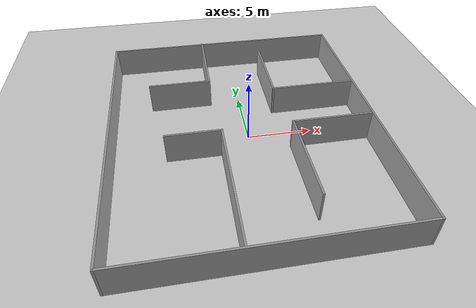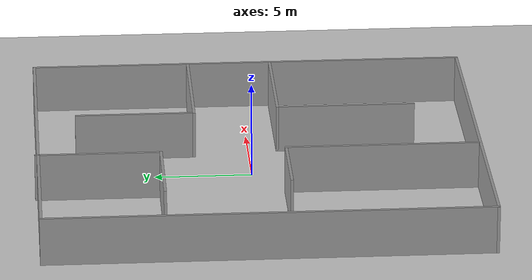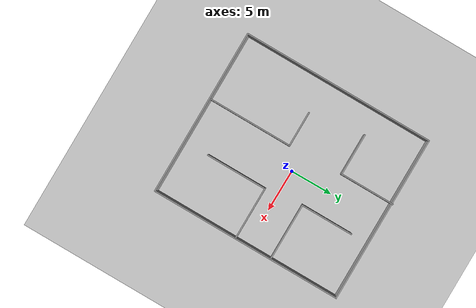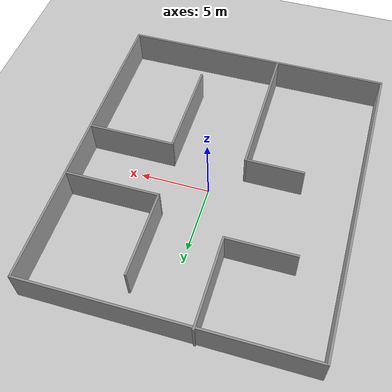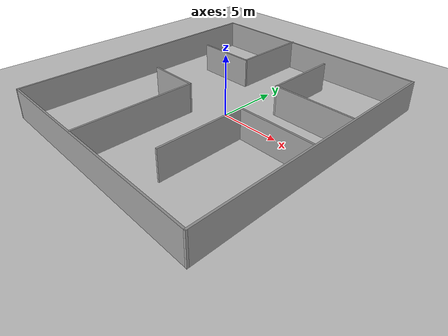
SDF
<sdf version="1.7">
 <world name="default">
  <light name="sun" type="directional">
   <pose>0 0 10 0 -0 0</pose>
   <diffuse>0.8 0.8 0.8 1</diffuse>
   <specular>0.2 0.2 0.2 1</specular>
   <attenuation>
    <range>1000</range>
    <constant>0.9</constant>
    <linear>0.01</linear>
    <quadratic>0.001</quadratic>
   </attenuation>
   <direction>-0.5 0.1 -0.9</direction>
   <spot><inner_angle>0</inner_angle><outer_angle>0</outer_angle><falloff>0</falloff></spot>
  </light>
  <model name="ground_plane">
   <static>1</static>
   <link name="link">
    <collision name="collision">
     <geometry><plane><normal>0 0 1</normal><size>100 100</size></plane></geometry>
     <surface>
      <contact><collide_bitmask>65535</collide_bitmask></contact>
      <friction><ode><mu>100</mu><mu2>50</mu2></ode></friction>
     </surface>
    </collision>
    <visual name="visual">
     <cast_shadows>0</cast_shadows>
     <geometry><plane><normal>0 0 1</normal><size>100 100</size></plane></geometry>
     <material>
      <script><uri>file://media/materials/scripts/gazebo.material</uri><name>Gazebo/Grey</name></script>
     </material>
    </visual>
   </link>
  </model>
  <gravity>0 0 -9.8</gravity>
  <magnetic_field>6e-06 2.3e-05 -4.2e-05</magnetic_field>
  <atmosphere type="adiabatic"/>
  <physics type="ode">
   <max_step_size>0.001</max_step_size>
   <real_time_factor>1</real_time_factor>
   <real_time_update_rate>1000</real_time_update_rate>
  </physics>
  <scene><ambient>0.4 0.4 0.4 1</ambient><background>0.7 0.7 0.7 1</background><shadows>1</shadows></scene>
  <spherical_coordinates>
   <surface_model>EARTH_WGS84</surface_model>
   <latitude_deg>0</latitude_deg>
   <longitude_deg>0</longitude_deg>
   <elevation>0</elevation>
   <heading_deg>0</heading_deg>
  </spherical_coordinates>
  <model name="home">
   <pose>-0.506319 -0.226024 0 0 -0 0</pose>
   <link name="Wall_10">
    <collision name="Wall_10_Collision">
     <geometry><box><size>19.75 0.15 2.5</size></box></geometry>
     <pose>0 0 1.25 0 -0 0</pose>
    </collision>
    <visual name="Wall_10_Visual">
     <pose>0 0 1.25 0 -0 0</pose>
     <geometry><box><size>19.75 0.15 2.5</size></box></geometry>
     <material>
      <script><uri>file://media/materials/scripts/gazebo.material</uri><name>Gazebo/Grey</name></script>
      <ambient>1 1 1 1</ambient>
     </material>
     <meta><layer>0</layer></meta>
    </visual>
    <pose>0 -11.3531 0 0 -0 3.14159</pose>
   </link>
   <link name="Wall_12">
    <collision name="Wall_12_Collision">
     <geometry><box><size>6.5 0.15 2.5</size></box></geometry>
     <pose>0 0 1.25 0 -0 0</pose>
    </collision>
    <visual name="Wall_12_Visual">
     <pose>0 0 1.25 0 -0 0</pose>
     <geometry><box><size>6.5 0.15 2.5</size></box></geometry>
     <material>
      <script><uri>file://media/materials/scripts/gazebo.material</uri><name>Gazebo/Grey</name></script>
      <ambient>1 1 1 1</ambient>
     </material>
     <meta><layer>0</layer></meta>
    </visual>
    <pose>-1.95077 8.17814 0 0 -0 -1.5708</pose>
   </link>
   <link name="Wall_13">
    <collision name="Wall_13_Collision">
     <geometry><box><size>5 0.15 2.5</size></box></geometry>
     <pose>0 0 1.25 0 -0 0</pose>
    </collision>
    <visual name="Wall_13_Visual">
     <pose>0 0 1.25 0 -0 0</pose>
     <geometry><box><size>5 0.15 2.5</size></box></geometry>
     <material>
      <script><uri>file://media/materials/scripts/gazebo.material</uri><name>Gazebo/Grey</name></script>
      <ambient>1 1 1 1</ambient>
     </material>
     <meta><layer>0</layer></meta>
    </visual>
    <pose>-4.37577 5.00314 0 0 -0 3.14159</pose>
   </link>
   <link name="Wall_15">
    <collision name="Wall_15_Collision">
     <geometry><box><size>10 0.15 2.5</size></box></geometry>
     <pose>0 0 1.25 0 -0 0</pose>
    </collision>
    <visual name="Wall_15_Visual">
     <pose>0 0 1.25 0 -0 0</pose>
     <geometry><box><size>10 0.15 2.5</size></box></geometry>
     <material>
      <script><uri>file://media/materials/scripts/gazebo.material</uri><name>Gazebo/Grey</name></script>
      <ambient>1 1 1 1</ambient>
     </material>
     <meta><layer>0</layer></meta>
    </visual>
    <pose>-1.73554 -6.32051 0 0 -0 1.5708</pose>
   </link>
   <link name="Wall_17">
    <collision name="Wall_17_Collision">
     <geometry><box><size>6.75 0.15 2.5</size></box></geometry>
     <pose>0 0 1.25 0 -0 0</pose>
    </collision>
    <visual name="Wall_17_Visual">
     <pose>0 0 1.25 0 -0 0</pose>
     <geometry><box><size>6.75 0.15 2.5</size></box></geometry>
     <material>
      <script><uri>file://media/materials/scripts/gazebo.material</uri><name>Gazebo/Grey</name></script>
      <ambient>1 1 1 1</ambient>
     </material>
     <meta><layer>0</layer></meta>
    </visual>
    <pose>6.3714 3.06697 0 0 -0 3.14159</pose>
   </link>
   <link name="Wall_18">
    <collision name="Wall_18_Collision">
     <geometry><box><size>6.25 0.15 2.5</size></box></geometry>
     <pose>0 0 1.25 0 -0 0</pose>
    </collision>
    <visual name="Wall_18_Visual">
     <pose>0 0 1.25 0 -0 0</pose>
     <geometry><box><size>6.25 0.15 2.5</size></box></geometry>
     <material>
      <script><uri>file://media/materials/scripts/gazebo.material</uri><name>Gazebo/Grey</name></script>
      <ambient>1 1 1 1</ambient>
     </material>
     <meta><layer>0</layer></meta>
    </visual>
    <pose>3.0714 6.11697 0 0 -0 1.5708</pose>
   </link>
   <link name="Wall_21">
    <collision name="Wall_21_Collision">
     <geometry><box><size>4.25 0.15 2.5</size></box></geometry>
     <pose>0 0 1.25 0 -0 0</pose>
    </collision>
    <visual name="Wall_21_Visual">
     <pose>0 0 1.25 0 -0 0</pose>
     <geometry><box><size>4.25 0.15 2.5</size></box></geometry>
     <material>
      <script><uri>file://media/materials/scripts/gazebo.material</uri><name>Gazebo/Grey</name></script>
      <ambient>1 1 1 1</ambient>
     </material>
     <meta><layer>0</layer></meta>
    </visual>
    <pose>-3.78554 -1.39551 0 0 -0 3.14159</pose>
   </link>
   <link name="Wall_23">
    <collision name="Wall_23_Collision">
     <geometry><box><size>6.25 0.15 2.5</size></box></geometry>
     <pose>0 0 1.25 0 -0 0</pose>
    </collision>
    <visual name="Wall_23_Visual">
     <pose>0 0 1.25 0 -0 0</pose>
     <geometry><box><size>6.25 0.15 2.5</size></box></geometry>
     <material>
      <script><uri>file://media/materials/scripts/gazebo.material</uri><name>Gazebo/Grey</name></script>
      <ambient>1 1 1 1</ambient>
     </material>
     <meta><layer>0</layer></meta>
    </visual>
    <pose>6.63698 -1.31273 0 0 -0 3.14159</pose>
   </link>
   <link name="Wall_24">
    <collision name="Wall_24_Collision">
     <geometry><box><size>7.25 0.15 2.5</size></box></geometry>
     <pose>0 0 1.25 0 -0 0</pose>
    </collision>
    <visual name="Wall_24_Visual">
     <pose>0 0 1.25 0 -0 0</pose>
     <geometry><box><size>7.25 0.15 2.5</size></box></geometry>
     <material>
      <script><uri>file://media/materials/scripts/gazebo.material</uri><name>Gazebo/Grey</name></script>
      <ambient>1 1 1 1</ambient>
     </material>
     <meta><layer>0</layer></meta>
    </visual>
    <pose>3.58698 -4.86273 0 0 -0 -1.5708</pose>
   </link>
   <link name="Wall_7">
    <collision name="Wall_7_Collision">
     <geometry><box><size>22.75 0.15 2.5</size></box></geometry>
     <pose>0 0 1.25 0 -0 0</pose>
    </collision>
    <visual name="Wall_7_Visual">
     <pose>0 0 1.25 0 -0 0</pose>
     <geometry><box><size>22.75 0.15 2.5</size></box></geometry>
     <material>
      <script><uri>file://media/materials/scripts/gazebo.material</uri><name>Gazebo/Grey</name></script>
      <ambient>1 1 1 1</ambient>
     </material>
     <meta><layer>0</layer></meta>
    </visual>
    <pose>-9.8 -0.053141 0 0 -0 1.5708</pose>
   </link>
   <link name="Wall_8">
    <collision name="Wall_8_Collision">
     <geometry><box><size>19.75 0.15 2.5</size></box></geometry>
     <pose>0 0 1.25 0 -0 0</pose>
    </collision>
    <visual name="Wall_8_Visual">
     <pose>0 0 1.25 0 -0 0</pose>
     <geometry><box><size>19.75 0.15 2.5</size></box></geometry>
     <material>
      <script><uri>file://media/materials/scripts/gazebo.material</uri><name>Gazebo/Grey</name></script>
      <ambient>1 1 1 1</ambient>
     </material>
     <meta><layer>0</layer></meta>
    </visual>
    <pose>0 11.2469 0 0 -0 0</pose>
   </link>
   <link name="Wall_9">
    <collision name="Wall_9_Collision">
     <geometry><box><size>22.75 0.15 2.5</size></box></geometry>
     <pose>0 0 1.25 0 -0 0</pose>
    </collision>
    <visual name="Wall_9_Visual">
     <pose>0 0 1.25 0 -0 0</pose>
     <geometry><box><size>22.75 0.15 2.5</size></box></geometry>
     <material>
      <script><uri>file://media/materials/scripts/gazebo.material</uri><name>Gazebo/Grey</name></script>
      <ambient>1 1 1 1</ambient>
     </material>
     <meta><layer>0</layer></meta>
    </visual>
    <pose>9.8 -0.053141 0 0 -0 -1.5708</pose>
   </link>
   <static>1</static>
  </model>
 </world>
</sdf>
